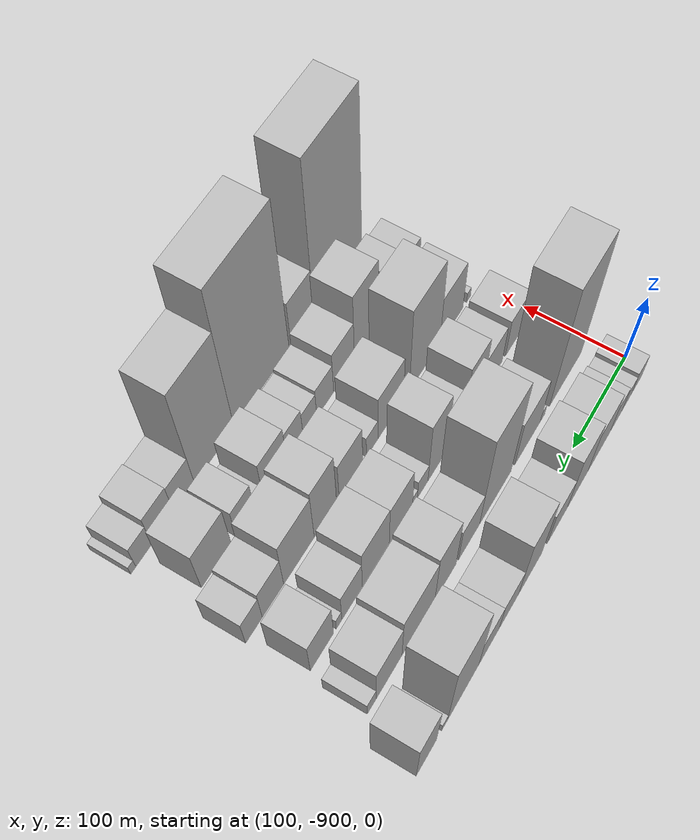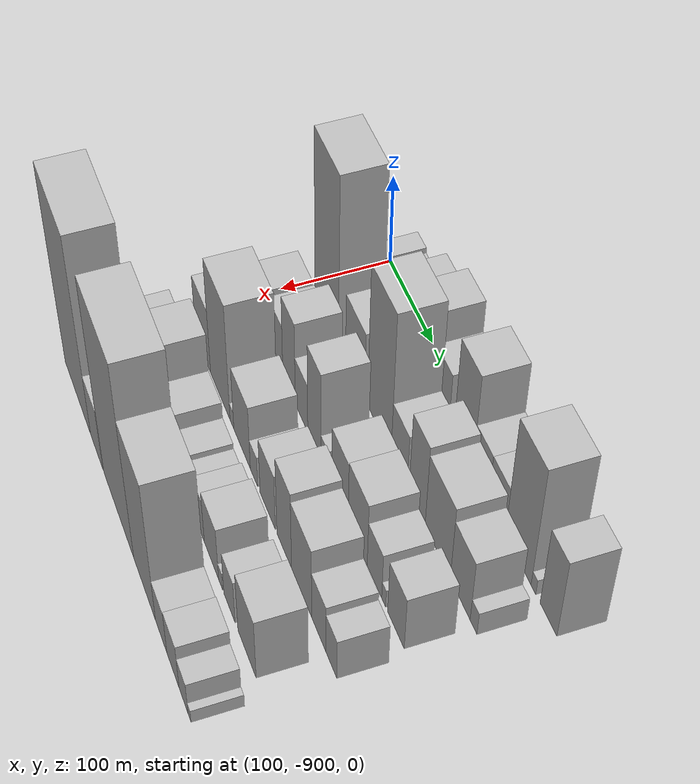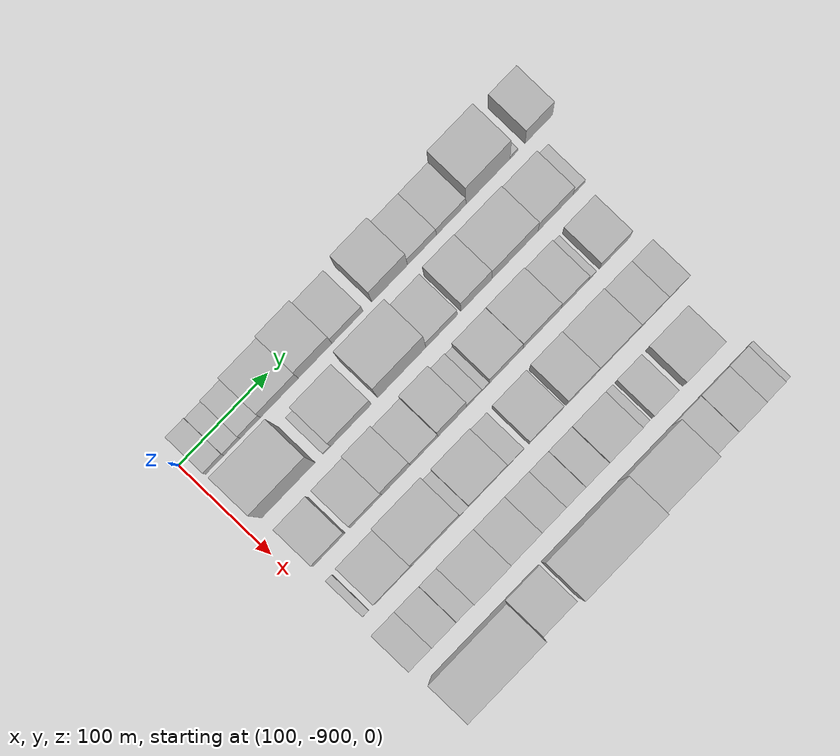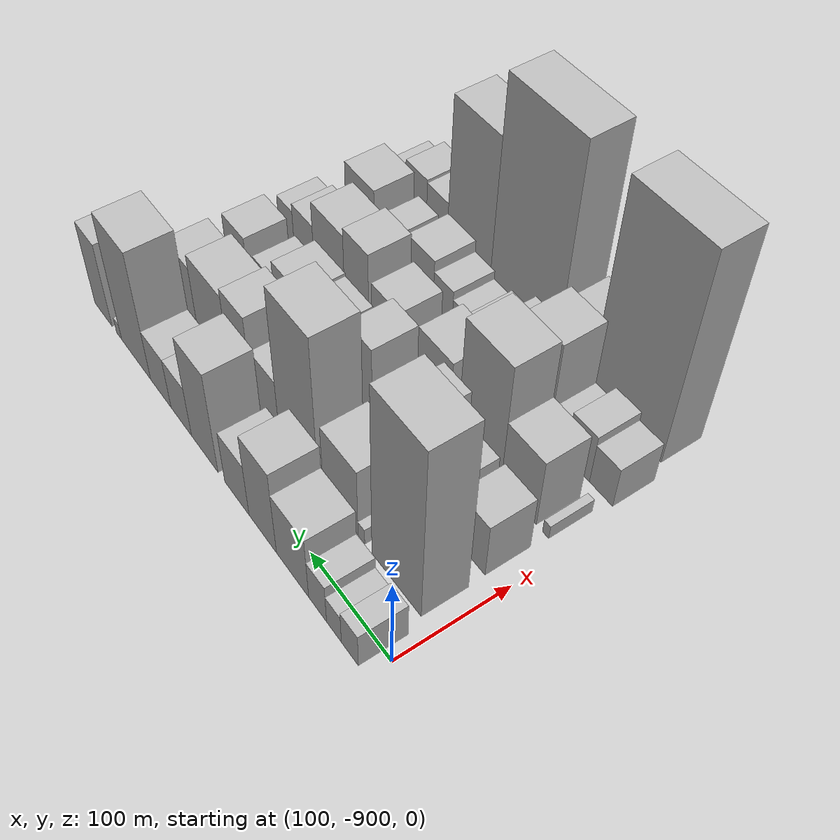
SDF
<sdf version="1.6">
 <world name="default">
  <model name="building_1">
   <static>1</static>
   <pose>100.0000 -879.7281 0 0.000000 0.000000 0.000000</pose>
   <link name="link">
    <pose>0 0 19.50 0 0 0</pose>
    <collision name="collision"><geometry><box><size>40.0000 20.5438 39.0000</size></box></geometry></collision>
    <visual name="visual">
     <cast_shadows>0</cast_shadows>
     <geometry><box><size>40.0000 20.5438 39.0000</size></box></geometry>
     <material>
      <script>
       <uri>model://HANNAS_wall/materials/scripts</uri>
       <uri>model://HANNAS_wall/materials/textures</uri>
       <name>vrc/HANNAS_wall</name>
      </script>
     </material>
    </visual>
   </link>
  </model>
  <model name="building_2">
   <static>1</static>
   <pose>100.0000 -860.3485 0 0.000000 0.000000 0.000000</pose>
   <link name="link">
    <pose>0 0 16.50 0 0 0</pose>
    <collision name="collision"><geometry><box><size>40.0000 18.2153 33.0000</size></box></geometry></collision>
    <visual name="visual">
     <cast_shadows>0</cast_shadows>
     <geometry><box><size>40.0000 18.2153 33.0000</size></box></geometry>
     <material>
      <script>
       <uri>model://HANNAS_wall/materials/scripts</uri>
       <uri>model://HANNAS_wall/materials/textures</uri>
       <name>vrc/HANNAS_wall</name>
      </script>
     </material>
    </visual>
   </link>
  </model>
  <model name="building_3">
   <static>1</static>
   <pose>100.0000 -839.9267 0 0.000000 0.000000 0.000000</pose>
   <link name="link">
    <pose>0 0 22.50 0 0 0</pose>
    <collision name="collision"><geometry><box><size>40.0000 22.6282 45.0000</size></box></geometry></collision>
    <visual name="visual">
     <cast_shadows>0</cast_shadows>
     <geometry><box><size>40.0000 22.6282 45.0000</size></box></geometry>
     <material>
      <script>
       <uri>model://HANNAS_wall/materials/scripts</uri>
       <uri>model://HANNAS_wall/materials/textures</uri>
       <name>vrc/HANNAS_wall</name>
      </script>
     </material>
    </visual>
   </link>
  </model>
  <model name="building_4">
   <static>1</static>
   <pose>100.0000 -807.4633 0 0.000000 0.000000 0.000000</pose>
   <link name="link">
    <pose>0 0 36.00 0 0 0</pose>
    <collision name="collision"><geometry><box><size>40.0000 42.2987 72.0000</size></box></geometry></collision>
    <visual name="visual">
     <cast_shadows>0</cast_shadows>
     <geometry><box><size>40.0000 42.2987 72.0000</size></box></geometry>
     <material>
      <script>
       <uri>model://HANNAS_wall/materials/scripts</uri>
       <uri>model://HANNAS_wall/materials/textures</uri>
       <name>vrc/HANNAS_wall</name>
      </script>
     </material>
    </visual>
   </link>
  </model>
  <model name="building_5">
   <static>1</static>
   <pose>100.0000 -767.4457 0 0.000000 0.000000 0.000000</pose>
   <link name="link">
    <pose>0 0 48.00 0 0 0</pose>
    <collision name="collision"><geometry><box><size>40.0000 37.7364 96.0000</size></box></geometry></collision>
    <visual name="visual">
     <cast_shadows>0</cast_shadows>
     <geometry><box><size>40.0000 37.7364 96.0000</size></box></geometry>
     <material>
      <script>
       <uri>model://HANNAS_wall/materials/scripts</uri>
       <uri>model://HANNAS_wall/materials/textures</uri>
       <name>vrc/HANNAS_wall</name>
      </script>
     </material>
    </visual>
   </link>
  </model>
  <model name="building_6">
   <static>1</static>
   <pose>100.0000 -731.1510 0 0.000000 0.000000 0.000000</pose>
   <link name="link">
    <pose>0 0 30.00 0 0 0</pose>
    <collision name="collision"><geometry><box><size>40.0000 34.8529 60.0000</size></box></geometry></collision>
    <visual name="visual">
     <cast_shadows>0</cast_shadows>
     <geometry><box><size>40.0000 34.8529 60.0000</size></box></geometry>
     <material>
      <script>
       <uri>model://HANNAS_wall/materials/scripts</uri>
       <uri>model://HANNAS_wall/materials/textures</uri>
       <name>vrc/HANNAS_wall</name>
      </script>
     </material>
    </visual>
   </link>
  </model>
  <model name="building_7">
   <static>1</static>
   <pose>100.0000 -683.6892 0 0.000000 0.000000 0.000000</pose>
   <link name="link">
    <pose>0 0 57.00 0 0 0</pose>
    <collision name="collision"><geometry><box><size>40.0000 40.0708 114.0000</size></box></geometry></collision>
    <visual name="visual">
     <cast_shadows>0</cast_shadows>
     <geometry><box><size>40.0000 40.0708 114.0000</size></box></geometry>
     <material>
      <script>
       <uri>model://HANNAS_wall/materials/scripts</uri>
       <uri>model://HANNAS_wall/materials/textures</uri>
       <name>vrc/HANNAS_wall</name>
      </script>
     </material>
    </visual>
   </link>
  </model>
  <model name="building_8">
   <static>1</static>
   <pose>100.0000 -647.4908 0 0.000000 0.000000 0.000000</pose>
   <link name="link">
    <pose>0 0 28.50 0 0 0</pose>
    <collision name="collision"><geometry><box><size>40.0000 32.3261 57.0000</size></box></geometry></collision>
    <visual name="visual">
     <cast_shadows>0</cast_shadows>
     <geometry><box><size>40.0000 32.3261 57.0000</size></box></geometry>
     <material>
      <script>
       <uri>model://HANNAS_wall/materials/scripts</uri>
       <uri>model://HANNAS_wall/materials/textures</uri>
       <name>vrc/HANNAS_wall</name>
      </script>
     </material>
    </visual>
   </link>
  </model>
  <model name="building_9">
   <static>1</static>
   <pose>100.0000 -614.7008 0 0.000000 0.000000 0.000000</pose>
   <link name="link">
    <pose>0 0 28.50 0 0 0</pose>
    <collision name="collision"><geometry><box><size>40.0000 33.2538 57.0000</size></box></geometry></collision>
    <visual name="visual">
     <cast_shadows>0</cast_shadows>
     <geometry><box><size>40.0000 33.2538 57.0000</size></box></geometry>
     <material>
      <script>
       <uri>model://HANNAS_wall/materials/scripts</uri>
       <uri>model://HANNAS_wall/materials/textures</uri>
       <name>vrc/HANNAS_wall</name>
      </script>
     </material>
    </visual>
   </link>
  </model>
  <model name="building_10">
   <static>1</static>
   <pose>100.0000 -573.3062 0 0.000000 0.000000 0.000000</pose>
   <link name="link">
    <pose>0 0 70.50 0 0 0</pose>
    <collision name="collision"><geometry><box><size>40.0000 49.5353 141.0000</size></box></geometry></collision>
    <visual name="visual">
     <cast_shadows>0</cast_shadows>
     <geometry><box><size>40.0000 49.5353 141.0000</size></box></geometry>
     <material>
      <script>
       <uri>model://HANNAS_wall/materials/scripts</uri>
       <uri>model://HANNAS_wall/materials/textures</uri>
       <name>vrc/HANNAS_wall</name>
      </script>
     </material>
    </visual>
   </link>
  </model>
  <model name="building_11">
   <static>1</static>
   <pose>100.0000 -544.0786 0 0.000000 0.000000 0.000000</pose>
   <link name="link">
    <pose>0 0 9.00 0 0 0</pose>
    <collision name="collision"><geometry><box><size>40.0000 8.9200 18.0000</size></box></geometry></collision>
    <visual name="visual">
     <cast_shadows>0</cast_shadows>
     <geometry><box><size>40.0000 8.9200 18.0000</size></box></geometry>
     <material>
      <script>
       <uri>model://HANNAS_wall/materials/scripts</uri>
       <uri>model://HANNAS_wall/materials/textures</uri>
       <name>vrc/HANNAS_wall</name>
      </script>
     </material>
    </visual>
   </link>
  </model>
  <model name="building_12">
   <static>1</static>
   <pose>100.0000 -516.1670 0 0.000000 0.000000 0.000000</pose>
   <link name="link">
    <pose>0 0 46.50 0 0 0</pose>
    <collision name="collision"><geometry><box><size>40.0000 30.9031 93.0000</size></box></geometry></collision>
    <visual name="visual">
     <cast_shadows>0</cast_shadows>
     <geometry><box><size>40.0000 30.9031 93.0000</size></box></geometry>
     <material>
      <script>
       <uri>model://HANNAS_wall/materials/scripts</uri>
       <uri>model://HANNAS_wall/materials/textures</uri>
       <name>vrc/HANNAS_wall</name>
      </script>
     </material>
    </visual>
   </link>
  </model>
  <model name="building_55">
   <static>1</static>
   <pose>155.0000 -854.1976 0 0.000000 0.000000 0.000000</pose>
   <link name="link">
    <pose>0 0 96.00 0 0 0</pose>
    <collision name="collision"><geometry><box><size>40.0000 59.6047 192.0000</size></box></geometry></collision>
    <visual name="visual">
     <cast_shadows>0</cast_shadows>
     <geometry><box><size>40.0000 59.6047 192.0000</size></box></geometry>
     <material>
      <script>
       <uri>model://HANNAS_wall/materials/scripts</uri>
       <uri>model://HANNAS_wall/materials/textures</uri>
       <name>vrc/HANNAS_wall</name>
      </script>
     </material>
    </visual>
   </link>
  </model>
  <model name="building_56">
   <static>1</static>
   <pose>155.0000 -811.1726 0 0.000000 0.000000 0.000000</pose>
   <link name="link">
    <pose>0 0 9.00 0 0 0</pose>
    <collision name="collision"><geometry><box><size>40.0000 8.4454 18.0000</size></box></geometry></collision>
    <visual name="visual">
     <cast_shadows>0</cast_shadows>
     <geometry><box><size>40.0000 8.4454 18.0000</size></box></geometry>
     <material>
      <script>
       <uri>model://HANNAS_wall/materials/scripts</uri>
       <uri>model://HANNAS_wall/materials/textures</uri>
       <name>vrc/HANNAS_wall</name>
      </script>
     </material>
    </visual>
   </link>
  </model>
  <model name="building_57">
   <static>1</static>
   <pose>155.0000 -784.1661 0 0.000000 0.000000 0.000000</pose>
   <link name="link">
    <pose>0 0 39.00 0 0 0</pose>
    <collision name="collision"><geometry><box><size>40.0000 45.5676 78.0000</size></box></geometry></collision>
    <visual name="visual">
     <cast_shadows>0</cast_shadows>
     <geometry><box><size>40.0000 45.5676 78.0000</size></box></geometry>
     <material>
      <script>
       <uri>model://HANNAS_wall/materials/scripts</uri>
       <uri>model://HANNAS_wall/materials/textures</uri>
       <name>vrc/HANNAS_wall</name>
      </script>
     </material>
    </visual>
   </link>
  </model>
  <model name="building_58">
   <static>1</static>
   <pose>155.0000 -727.2576 0 0.000000 0.000000 0.000000</pose>
   <link name="link">
    <pose>0 0 82.50 0 0 0</pose>
    <collision name="collision"><geometry><box><size>40.0000 54.2494 165.0000</size></box></geometry></collision>
    <visual name="visual">
     <cast_shadows>0</cast_shadows>
     <geometry><box><size>40.0000 54.2494 165.0000</size></box></geometry>
     <material>
      <script>
       <uri>model://HANNAS_wall/materials/scripts</uri>
       <uri>model://HANNAS_wall/materials/textures</uri>
       <name>vrc/HANNAS_wall</name>
      </script>
     </material>
    </visual>
   </link>
  </model>
  <model name="building_59">
   <static>1</static>
   <pose>155.0000 -682.4981 0 0.000000 0.000000 0.000000</pose>
   <link name="link">
    <pose>0 0 31.50 0 0 0</pose>
    <collision name="collision"><geometry><box><size>40.0000 35.2697 63.0000</size></box></geometry></collision>
    <visual name="visual">
     <cast_shadows>0</cast_shadows>
     <geometry><box><size>40.0000 35.2697 63.0000</size></box></geometry>
     <material>
      <script>
       <uri>model://HANNAS_wall/materials/scripts</uri>
       <uri>model://HANNAS_wall/materials/textures</uri>
       <name>vrc/HANNAS_wall</name>
      </script>
     </material>
    </visual>
   </link>
  </model>
  <model name="building_60">
   <static>1</static>
   <pose>155.0000 -643.5896 0 0.000000 0.000000 0.000000</pose>
   <link name="link">
    <pose>0 0 48.00 0 0 0</pose>
    <collision name="collision"><geometry><box><size>40.0000 34.5473 96.0000</size></box></geometry></collision>
    <visual name="visual">
     <cast_shadows>0</cast_shadows>
     <geometry><box><size>40.0000 34.5473 96.0000</size></box></geometry>
     <material>
      <script>
       <uri>model://HANNAS_wall/materials/scripts</uri>
       <uri>model://HANNAS_wall/materials/textures</uri>
       <name>vrc/HANNAS_wall</name>
      </script>
     </material>
    </visual>
   </link>
  </model>
  <model name="building_61">
   <static>1</static>
   <pose>155.0000 -600.2814 0 0.000000 0.000000 0.000000</pose>
   <link name="link">
    <pose>0 0 43.50 0 0 0</pose>
    <collision name="collision"><geometry><box><size>40.0000 52.0693 87.0000</size></box></geometry></collision>
    <visual name="visual">
     <cast_shadows>0</cast_shadows>
     <geometry><box><size>40.0000 52.0693 87.0000</size></box></geometry>
     <material>
      <script>
       <uri>model://HANNAS_wall/materials/scripts</uri>
       <uri>model://HANNAS_wall/materials/textures</uri>
       <name>vrc/HANNAS_wall</name>
      </script>
     </material>
    </visual>
   </link>
  </model>
  <model name="building_62">
   <static>1</static>
   <pose>155.0000 -554.6018 0 0.000000 0.000000 0.000000</pose>
   <link name="link">
    <pose>0 0 36.00 0 0 0</pose>
    <collision name="collision"><geometry><box><size>40.0000 39.2900 72.0000</size></box></geometry></collision>
    <visual name="visual">
     <cast_shadows>0</cast_shadows>
     <geometry><box><size>40.0000 39.2900 72.0000</size></box></geometry>
     <material>
      <script>
       <uri>model://HANNAS_wall/materials/scripts</uri>
       <uri>model://HANNAS_wall/materials/textures</uri>
       <name>vrc/HANNAS_wall</name>
      </script>
     </material>
    </visual>
   </link>
  </model>
  <model name="building_63">
   <static>1</static>
   <pose>155.0000 -528.2861 0 0.000000 0.000000 0.000000</pose>
   <link name="link">
    <pose>0 0 13.50 0 0 0</pose>
    <collision name="collision"><geometry><box><size>40.0000 13.3414 27.0000</size></box></geometry></collision>
    <visual name="visual">
     <cast_shadows>0</cast_shadows>
     <geometry><box><size>40.0000 13.3414 27.0000</size></box></geometry>
     <material>
      <script>
       <uri>model://HANNAS_wall/materials/scripts</uri>
       <uri>model://HANNAS_wall/materials/textures</uri>
       <name>vrc/HANNAS_wall</name>
      </script>
     </material>
    </visual>
   </link>
  </model>
  <model name="building_104">
   <static>1</static>
   <pose>210.0000 -865.3353 0 0.000000 0.000000 0.000000</pose>
   <link name="link">
    <pose>0 0 30.00 0 0 0</pose>
    <collision name="collision"><geometry><box><size>40.0000 35.3293 60.0000</size></box></geometry></collision>
    <visual name="visual">
     <cast_shadows>0</cast_shadows>
     <geometry><box><size>40.0000 35.3293 60.0000</size></box></geometry>
     <material>
      <script>
       <uri>model://HANNAS_wall/materials/scripts</uri>
       <uri>model://HANNAS_wall/materials/textures</uri>
       <name>vrc/HANNAS_wall</name>
      </script>
     </material>
    </visual>
   </link>
  </model>
  <model name="building_105">
   <static>1</static>
   <pose>210.0000 -824.0180 0 0.000000 0.000000 0.000000</pose>
   <link name="link">
    <pose>0 0 30.00 0 0 0</pose>
    <collision name="collision"><geometry><box><size>40.0000 35.3052 60.0000</size></box></geometry></collision>
    <visual name="visual">
     <cast_shadows>0</cast_shadows>
     <geometry><box><size>40.0000 35.3052 60.0000</size></box></geometry>
     <material>
      <script>
       <uri>model://HANNAS_wall/materials/scripts</uri>
       <uri>model://HANNAS_wall/materials/textures</uri>
       <name>vrc/HANNAS_wall</name>
      </script>
     </material>
    </visual>
   </link>
  </model>
  <model name="building_106">
   <static>1</static>
   <pose>210.0000 -790.4608 0 0.000000 0.000000 0.000000</pose>
   <link name="link">
    <pose>0 0 48.00 0 0 0</pose>
    <collision name="collision"><geometry><box><size>40.0000 31.8093 96.0000</size></box></geometry></collision>
    <visual name="visual">
     <cast_shadows>0</cast_shadows>
     <geometry><box><size>40.0000 31.8093 96.0000</size></box></geometry>
     <material>
      <script>
       <uri>model://HANNAS_wall/materials/scripts</uri>
       <uri>model://HANNAS_wall/materials/textures</uri>
       <name>vrc/HANNAS_wall</name>
      </script>
     </material>
    </visual>
   </link>
  </model>
  <model name="building_107">
   <static>1</static>
   <pose>210.0000 -759.1476 0 0.000000 0.000000 0.000000</pose>
   <link name="link">
    <pose>0 0 28.50 0 0 0</pose>
    <collision name="collision"><geometry><box><size>40.0000 30.8170 57.0000</size></box></geometry></collision>
    <visual name="visual">
     <cast_shadows>0</cast_shadows>
     <geometry><box><size>40.0000 30.8170 57.0000</size></box></geometry>
     <material>
      <script>
       <uri>model://HANNAS_wall/materials/scripts</uri>
       <uri>model://HANNAS_wall/materials/textures</uri>
       <name>vrc/HANNAS_wall</name>
      </script>
     </material>
    </visual>
   </link>
  </model>
  <model name="building_108">
   <static>1</static>
   <pose>210.0000 -727.8220 0 0.000000 0.000000 0.000000</pose>
   <link name="link">
    <pose>0 0 52.50 0 0 0</pose>
    <collision name="collision"><geometry><box><size>40.0000 31.8343 105.0000</size></box></geometry></collision>
    <visual name="visual">
     <cast_shadows>0</cast_shadows>
     <geometry><box><size>40.0000 31.8343 105.0000</size></box></geometry>
     <material>
      <script>
       <uri>model://HANNAS_wall/materials/scripts</uri>
       <uri>model://HANNAS_wall/materials/textures</uri>
       <name>vrc/HANNAS_wall</name>
      </script>
     </material>
    </visual>
   </link>
  </model>
  <model name="building_109">
   <static>1</static>
   <pose>210.0000 -703.1631 0 0.000000 0.000000 0.000000</pose>
   <link name="link">
    <pose>0 0 16.50 0 0 0</pose>
    <collision name="collision"><geometry><box><size>40.0000 17.4833 33.0000</size></box></geometry></collision>
    <visual name="visual">
     <cast_shadows>0</cast_shadows>
     <geometry><box><size>40.0000 17.4833 33.0000</size></box></geometry>
     <material>
      <script>
       <uri>model://HANNAS_wall/materials/scripts</uri>
       <uri>model://HANNAS_wall/materials/textures</uri>
       <name>vrc/HANNAS_wall</name>
      </script>
     </material>
    </visual>
   </link>
  </model>
  <model name="building_110">
   <static>1</static>
   <pose>210.0000 -690.2807 0 0.000000 0.000000 0.000000</pose>
   <link name="link">
    <pose>0 0 9.00 0 0 0</pose>
    <collision name="collision"><geometry><box><size>40.0000 8.2816 18.0000</size></box></geometry></collision>
    <visual name="visual">
     <cast_shadows>0</cast_shadows>
     <geometry><box><size>40.0000 8.2816 18.0000</size></box></geometry>
     <material>
      <script>
       <uri>model://HANNAS_wall/materials/scripts</uri>
       <uri>model://HANNAS_wall/materials/textures</uri>
       <name>vrc/HANNAS_wall</name>
      </script>
     </material>
    </visual>
   </link>
  </model>
  <model name="building_111">
   <static>1</static>
   <pose>210.0000 -667.3790 0 0.000000 0.000000 0.000000</pose>
   <link name="link">
    <pose>0 0 36.00 0 0 0</pose>
    <collision name="collision"><geometry><box><size>40.0000 37.5217 72.0000</size></box></geometry></collision>
    <visual name="visual">
     <cast_shadows>0</cast_shadows>
     <geometry><box><size>40.0000 37.5217 72.0000</size></box></geometry>
     <material>
      <script>
       <uri>model://HANNAS_wall/materials/scripts</uri>
       <uri>model://HANNAS_wall/materials/textures</uri>
       <name>vrc/HANNAS_wall</name>
      </script>
     </material>
    </visual>
   </link>
  </model>
  <model name="building_112">
   <static>1</static>
   <pose>210.0000 -627.3576 0 0.000000 0.000000 0.000000</pose>
   <link name="link">
    <pose>0 0 37.50 0 0 0</pose>
    <collision name="collision"><geometry><box><size>40.0000 42.5210 75.0000</size></box></geometry></collision>
    <visual name="visual">
     <cast_shadows>0</cast_shadows>
     <geometry><box><size>40.0000 42.5210 75.0000</size></box></geometry>
     <material>
      <script>
       <uri>model://HANNAS_wall/materials/scripts</uri>
       <uri>model://HANNAS_wall/materials/textures</uri>
       <name>vrc/HANNAS_wall</name>
      </script>
     </material>
    </visual>
   </link>
  </model>
  <model name="building_113">
   <static>1</static>
   <pose>210.0000 -590.4951 0 0.000000 0.000000 0.000000</pose>
   <link name="link">
    <pose>0 0 27.00 0 0 0</pose>
    <collision name="collision"><geometry><box><size>40.0000 31.2040 54.0000</size></box></geometry></collision>
    <visual name="visual">
     <cast_shadows>0</cast_shadows>
     <geometry><box><size>40.0000 31.2040 54.0000</size></box></geometry>
     <material>
      <script>
       <uri>model://HANNAS_wall/materials/scripts</uri>
       <uri>model://HANNAS_wall/materials/textures</uri>
       <name>vrc/HANNAS_wall</name>
      </script>
     </material>
    </visual>
   </link>
  </model>
  <model name="building_114">
   <static>1</static>
   <pose>210.0000 -570.6466 0 0.000000 0.000000 0.000000</pose>
   <link name="link">
    <pose>0 0 10.50 0 0 0</pose>
    <collision name="collision"><geometry><box><size>40.0000 8.4931 21.0000</size></box></geometry></collision>
    <visual name="visual">
     <cast_shadows>0</cast_shadows>
     <geometry><box><size>40.0000 8.4931 21.0000</size></box></geometry>
     <material>
      <script>
       <uri>model://HANNAS_wall/materials/scripts</uri>
       <uri>model://HANNAS_wall/materials/textures</uri>
       <name>vrc/HANNAS_wall</name>
      </script>
     </material>
    </visual>
   </link>
  </model>
  <model name="building_115">
   <static>1</static>
   <pose>210.0000 -545.1533 0 0.000000 0.000000 0.000000</pose>
   <link name="link">
    <pose>0 0 31.50 0 0 0</pose>
    <collision name="collision"><geometry><box><size>40.0000 34.4934 63.0000</size></box></geometry></collision>
    <visual name="visual">
     <cast_shadows>0</cast_shadows>
     <geometry><box><size>40.0000 34.4934 63.0000</size></box></geometry>
     <material>
      <script>
       <uri>model://HANNAS_wall/materials/scripts</uri>
       <uri>model://HANNAS_wall/materials/textures</uri>
       <name>vrc/HANNAS_wall</name>
      </script>
     </material>
    </visual>
   </link>
  </model>
  <model name="building_155">
   <static>1</static>
   <pose>265.0000 -881.4780 0 0.000000 0.000000 0.000000</pose>
   <link name="link">
    <pose>0 0 7.50 0 0 0</pose>
    <collision name="collision"><geometry><box><size>40.0000 7.0440 15.0000</size></box></geometry></collision>
    <visual name="visual">
     <cast_shadows>0</cast_shadows>
     <geometry><box><size>40.0000 7.0440 15.0000</size></box></geometry>
     <material>
      <script>
       <uri>model://HANNAS_wall/materials/scripts</uri>
       <uri>model://HANNAS_wall/materials/textures</uri>
       <name>vrc/HANNAS_wall</name>
      </script>
     </material>
    </visual>
   </link>
  </model>
  <model name="building_156">
   <static>1</static>
   <pose>265.0000 -850.2596 0 0.000000 0.000000 0.000000</pose>
   <link name="link">
    <pose>0 0 37.50 0 0 0</pose>
    <collision name="collision"><geometry><box><size>40.0000 41.3928 75.0000</size></box></geometry></collision>
    <visual name="visual">
     <cast_shadows>0</cast_shadows>
     <geometry><box><size>40.0000 41.3928 75.0000</size></box></geometry>
     <material>
      <script>
       <uri>model://HANNAS_wall/materials/scripts</uri>
       <uri>model://HANNAS_wall/materials/textures</uri>
       <name>vrc/HANNAS_wall</name>
      </script>
     </material>
    </visual>
   </link>
  </model>
  <model name="building_157">
   <static>1</static>
   <pose>265.0000 -803.0641 0 0.000000 0.000000 0.000000</pose>
   <link name="link">
    <pose>0 0 67.50 0 0 0</pose>
    <collision name="collision"><geometry><box><size>40.0000 52.9983 135.0000</size></box></geometry></collision>
    <visual name="visual">
     <cast_shadows>0</cast_shadows>
     <geometry><box><size>40.0000 52.9983 135.0000</size></box></geometry>
     <material>
      <script>
       <uri>model://HANNAS_wall/materials/scripts</uri>
       <uri>model://HANNAS_wall/materials/textures</uri>
       <name>vrc/HANNAS_wall</name>
      </script>
     </material>
    </visual>
   </link>
  </model>
  <model name="building_158">
   <static>1</static>
   <pose>265.0000 -771.4988 0 0.000000 0.000000 0.000000</pose>
   <link name="link">
    <pose>0 0 10.50 0 0 0</pose>
    <collision name="collision"><geometry><box><size>40.0000 10.1322 21.0000</size></box></geometry></collision>
    <visual name="visual">
     <cast_shadows>0</cast_shadows>
     <geometry><box><size>40.0000 10.1322 21.0000</size></box></geometry>
     <material>
      <script>
       <uri>model://HANNAS_wall/materials/scripts</uri>
       <uri>model://HANNAS_wall/materials/textures</uri>
       <name>vrc/HANNAS_wall</name>
      </script>
     </material>
    </visual>
   </link>
  </model>
  <model name="building_159">
   <static>1</static>
   <pose>265.0000 -744.9496 0 0.000000 0.000000 0.000000</pose>
   <link name="link">
    <pose>0 0 37.50 0 0 0</pose>
    <collision name="collision"><geometry><box><size>40.0000 42.9663 75.0000</size></box></geometry></collision>
    <visual name="visual">
     <cast_shadows>0</cast_shadows>
     <geometry><box><size>40.0000 42.9663 75.0000</size></box></geometry>
     <material>
      <script>
       <uri>model://HANNAS_wall/materials/scripts</uri>
       <uri>model://HANNAS_wall/materials/textures</uri>
       <name>vrc/HANNAS_wall</name>
      </script>
     </material>
    </visual>
   </link>
  </model>
  <model name="building_160">
   <static>1</static>
   <pose>265.0000 -714.1435 0 0.000000 0.000000 0.000000</pose>
   <link name="link">
    <pose>0 0 18.00 0 0 0</pose>
    <collision name="collision"><geometry><box><size>40.0000 18.6459 36.0000</size></box></geometry></collision>
    <visual name="visual">
     <cast_shadows>0</cast_shadows>
     <geometry><box><size>40.0000 18.6459 36.0000</size></box></geometry>
     <material>
      <script>
       <uri>model://HANNAS_wall/materials/scripts</uri>
       <uri>model://HANNAS_wall/materials/textures</uri>
       <name>vrc/HANNAS_wall</name>
      </script>
     </material>
    </visual>
   </link>
  </model>
  <model name="building_161">
   <static>1</static>
   <pose>265.0000 -679.9780 0 0.000000 0.000000 0.000000</pose>
   <link name="link">
    <pose>0 0 33.00 0 0 0</pose>
    <collision name="collision"><geometry><box><size>40.0000 37.6849 66.0000</size></box></geometry></collision>
    <visual name="visual">
     <cast_shadows>0</cast_shadows>
     <geometry><box><size>40.0000 37.6849 66.0000</size></box></geometry>
     <material>
      <script>
       <uri>model://HANNAS_wall/materials/scripts</uri>
       <uri>model://HANNAS_wall/materials/textures</uri>
       <name>vrc/HANNAS_wall</name>
      </script>
     </material>
    </visual>
   </link>
  </model>
  <model name="building_162">
   <static>1</static>
   <pose>265.0000 -639.7075 0 0.000000 0.000000 0.000000</pose>
   <link name="link">
    <pose>0 0 46.50 0 0 0</pose>
    <collision name="collision"><geometry><box><size>40.0000 34.8561 93.0000</size></box></geometry></collision>
    <visual name="visual">
     <cast_shadows>0</cast_shadows>
     <geometry><box><size>40.0000 34.8561 93.0000</size></box></geometry>
     <material>
      <script>
       <uri>model://HANNAS_wall/materials/scripts</uri>
       <uri>model://HANNAS_wall/materials/textures</uri>
       <name>vrc/HANNAS_wall</name>
      </script>
     </material>
    </visual>
   </link>
  </model>
  <model name="building_163">
   <static>1</static>
   <pose>265.0000 -599.2137 0 0.000000 0.000000 0.000000</pose>
   <link name="link">
    <pose>0 0 42.00 0 0 0</pose>
    <collision name="collision"><geometry><box><size>40.0000 46.1316 84.0000</size></box></geometry></collision>
    <visual name="visual">
     <cast_shadows>0</cast_shadows>
     <geometry><box><size>40.0000 46.1316 84.0000</size></box></geometry>
     <material>
      <script>
       <uri>model://HANNAS_wall/materials/scripts</uri>
       <uri>model://HANNAS_wall/materials/textures</uri>
       <name>vrc/HANNAS_wall</name>
      </script>
     </material>
    </visual>
   </link>
  </model>
  <model name="building_164">
   <static>1</static>
   <pose>265.0000 -560.3516 0 0.000000 0.000000 0.000000</pose>
   <link name="link">
    <pose>0 0 28.50 0 0 0</pose>
    <collision name="collision"><geometry><box><size>40.0000 31.5925 57.0000</size></box></geometry></collision>
    <visual name="visual">
     <cast_shadows>0</cast_shadows>
     <geometry><box><size>40.0000 31.5925 57.0000</size></box></geometry>
     <material>
      <script>
       <uri>model://HANNAS_wall/materials/scripts</uri>
       <uri>model://HANNAS_wall/materials/textures</uri>
       <name>vrc/HANNAS_wall</name>
      </script>
     </material>
    </visual>
   </link>
  </model>
  <model name="building_165">
   <static>1</static>
   <pose>265.0000 -532.5543 0 0.000000 0.000000 0.000000</pose>
   <link name="link">
    <pose>0 0 24.00 0 0 0</pose>
    <collision name="collision"><geometry><box><size>40.0000 24.0023 48.0000</size></box></geometry></collision>
    <visual name="visual">
     <cast_shadows>0</cast_shadows>
     <geometry><box><size>40.0000 24.0023 48.0000</size></box></geometry>
     <material>
      <script>
       <uri>model://HANNAS_wall/materials/scripts</uri>
       <uri>model://HANNAS_wall/materials/textures</uri>
       <name>vrc/HANNAS_wall</name>
      </script>
     </material>
    </visual>
   </link>
  </model>
  <model name="building_212">
   <static>1</static>
   <pose>320.0000 -877.1069 0 0.000000 0.000000 0.000000</pose>
   <link name="link">
    <pose>0 0 22.50 0 0 0</pose>
    <collision name="collision"><geometry><box><size>40.0000 25.7862 45.0000</size></box></geometry></collision>
    <visual name="visual">
     <cast_shadows>0</cast_shadows>
     <geometry><box><size>40.0000 25.7862 45.0000</size></box></geometry>
     <material>
      <script>
       <uri>model://HANNAS_wall/materials/scripts</uri>
       <uri>model://HANNAS_wall/materials/textures</uri>
       <name>vrc/HANNAS_wall</name>
      </script>
     </material>
    </visual>
   </link>
  </model>
  <model name="building_213">
   <static>1</static>
   <pose>320.0000 -850.6673 0 0.000000 0.000000 0.000000</pose>
   <link name="link">
    <pose>0 0 27.00 0 0 0</pose>
    <collision name="collision"><geometry><box><size>40.0000 27.0930 54.0000</size></box></geometry></collision>
    <visual name="visual">
     <cast_shadows>0</cast_shadows>
     <geometry><box><size>40.0000 27.0930 54.0000</size></box></geometry>
     <material>
      <script>
       <uri>model://HANNAS_wall/materials/scripts</uri>
       <uri>model://HANNAS_wall/materials/textures</uri>
       <name>vrc/HANNAS_wall</name>
      </script>
     </material>
    </visual>
   </link>
  </model>
  <model name="building_214">
   <static>1</static>
   <pose>320.0000 -827.1272 0 0.000000 0.000000 0.000000</pose>
   <link name="link">
    <pose>0 0 19.50 0 0 0</pose>
    <collision name="collision"><geometry><box><size>40.0000 19.9871 39.0000</size></box></geometry></collision>
    <visual name="visual">
     <cast_shadows>0</cast_shadows>
     <geometry><box><size>40.0000 19.9871 39.0000</size></box></geometry>
     <material>
      <script>
       <uri>model://HANNAS_wall/materials/scripts</uri>
       <uri>model://HANNAS_wall/materials/textures</uri>
       <name>vrc/HANNAS_wall</name>
      </script>
     </material>
    </visual>
   </link>
  </model>
  <model name="building_215">
   <static>1</static>
   <pose>320.0000 -797.0201 0 0.000000 0.000000 0.000000</pose>
   <link name="link">
    <pose>0 0 54.00 0 0 0</pose>
    <collision name="collision"><geometry><box><size>40.0000 40.2270 108.0000</size></box></geometry></collision>
    <visual name="visual">
     <cast_shadows>0</cast_shadows>
     <geometry><box><size>40.0000 40.2270 108.0000</size></box></geometry>
     <material>
      <script>
       <uri>model://HANNAS_wall/materials/scripts</uri>
       <uri>model://HANNAS_wall/materials/textures</uri>
       <name>vrc/HANNAS_wall</name>
      </script>
     </material>
    </visual>
   </link>
  </model>
  <model name="building_216">
   <static>1</static>
   <pose>320.0000 -759.6730 0 0.000000 0.000000 0.000000</pose>
   <link name="link">
    <pose>0 0 33.00 0 0 0</pose>
    <collision name="collision"><geometry><box><size>40.0000 34.4671 66.0000</size></box></geometry></collision>
    <visual name="visual">
     <cast_shadows>0</cast_shadows>
     <geometry><box><size>40.0000 34.4671 66.0000</size></box></geometry>
     <material>
      <script>
       <uri>model://HANNAS_wall/materials/scripts</uri>
       <uri>model://HANNAS_wall/materials/textures</uri>
       <name>vrc/HANNAS_wall</name>
      </script>
     </material>
    </visual>
   </link>
  </model>
  <model name="building_217">
   <static>1</static>
   <pose>320.0000 -728.8357 0 0.000000 0.000000 0.000000</pose>
   <link name="link">
    <pose>0 0 24.00 0 0 0</pose>
    <collision name="collision"><geometry><box><size>40.0000 27.2076 48.0000</size></box></geometry></collision>
    <visual name="visual">
     <cast_shadows>0</cast_shadows>
     <geometry><box><size>40.0000 27.2076 48.0000</size></box></geometry>
     <material>
      <script>
       <uri>model://HANNAS_wall/materials/scripts</uri>
       <uri>model://HANNAS_wall/materials/textures</uri>
       <name>vrc/HANNAS_wall</name>
      </script>
     </material>
    </visual>
   </link>
  </model>
  <model name="building_218">
   <static>1</static>
   <pose>320.0000 -704.3555 0 0.000000 0.000000 0.000000</pose>
   <link name="link">
    <pose>0 0 21.00 0 0 0</pose>
    <collision name="collision"><geometry><box><size>40.0000 21.7528 42.0000</size></box></geometry></collision>
    <visual name="visual">
     <cast_shadows>0</cast_shadows>
     <geometry><box><size>40.0000 21.7528 42.0000</size></box></geometry>
     <material>
      <script>
       <uri>model://HANNAS_wall/materials/scripts</uri>
       <uri>model://HANNAS_wall/materials/textures</uri>
       <name>vrc/HANNAS_wall</name>
      </script>
     </material>
    </visual>
   </link>
  </model>
  <model name="building_219">
   <static>1</static>
   <pose>320.0000 -680.6403 0 0.000000 0.000000 0.000000</pose>
   <link name="link">
    <pose>0 0 25.50 0 0 0</pose>
    <collision name="collision"><geometry><box><size>40.0000 25.6777 51.0000</size></box></geometry></collision>
    <visual name="visual">
     <cast_shadows>0</cast_shadows>
     <geometry><box><size>40.0000 25.6777 51.0000</size></box></geometry>
     <material>
      <script>
       <uri>model://HANNAS_wall/materials/scripts</uri>
       <uri>model://HANNAS_wall/materials/textures</uri>
       <name>vrc/HANNAS_wall</name>
      </script>
     </material>
    </visual>
   </link>
  </model>
  <model name="building_220">
   <static>1</static>
   <pose>320.0000 -649.3869 0 0.000000 0.000000 0.000000</pose>
   <link name="link">
    <pose>0 0 31.50 0 0 0</pose>
    <collision name="collision"><geometry><box><size>40.0000 36.8290 63.0000</size></box></geometry></collision>
    <visual name="visual">
     <cast_shadows>0</cast_shadows>
     <geometry><box><size>40.0000 36.8290 63.0000</size></box></geometry>
     <material>
      <script>
       <uri>model://HANNAS_wall/materials/scripts</uri>
       <uri>model://HANNAS_wall/materials/textures</uri>
       <name>vrc/HANNAS_wall</name>
      </script>
     </material>
    </visual>
   </link>
  </model>
  <model name="building_221">
   <static>1</static>
   <pose>320.0000 -626.0135 0 0.000000 0.000000 0.000000</pose>
   <link name="link">
    <pose>0 0 10.50 0 0 0</pose>
    <collision name="collision"><geometry><box><size>40.0000 9.9178 21.0000</size></box></geometry></collision>
    <visual name="visual">
     <cast_shadows>0</cast_shadows>
     <geometry><box><size>40.0000 9.9178 21.0000</size></box></geometry>
     <material>
      <script>
       <uri>model://HANNAS_wall/materials/scripts</uri>
       <uri>model://HANNAS_wall/materials/textures</uri>
       <name>vrc/HANNAS_wall</name>
      </script>
     </material>
    </visual>
   </link>
  </model>
  <model name="building_222">
   <static>1</static>
   <pose>320.0000 -604.2664 0 0.000000 0.000000 0.000000</pose>
   <link name="link">
    <pose>0 0 25.50 0 0 0</pose>
    <collision name="collision"><geometry><box><size>40.0000 27.5764 51.0000</size></box></geometry></collision>
    <visual name="visual">
     <cast_shadows>0</cast_shadows>
     <geometry><box><size>40.0000 27.5764 51.0000</size></box></geometry>
     <material>
      <script>
       <uri>model://HANNAS_wall/materials/scripts</uri>
       <uri>model://HANNAS_wall/materials/textures</uri>
       <name>vrc/HANNAS_wall</name>
      </script>
     </material>
    </visual>
   </link>
  </model>
  <model name="building_223">
   <static>1</static>
   <pose>320.0000 -561.8877 0 0.000000 0.000000 0.000000</pose>
   <link name="link">
    <pose>0 0 36.00 0 0 0</pose>
    <collision name="collision"><geometry><box><size>40.0000 43.1809 72.0000</size></box></geometry></collision>
    <visual name="visual">
     <cast_shadows>0</cast_shadows>
     <geometry><box><size>40.0000 43.1809 72.0000</size></box></geometry>
     <material>
      <script>
       <uri>model://HANNAS_wall/materials/scripts</uri>
       <uri>model://HANNAS_wall/materials/textures</uri>
       <name>vrc/HANNAS_wall</name>
      </script>
     </material>
    </visual>
   </link>
  </model>
  <model name="building_264">
   <static>1</static>
   <pose>375.0000 -839.9129 0 0.000000 0.000000 0.000000</pose>
   <link name="link">
    <pose>0 0 112.50 0 0 0</pose>
    <collision name="collision"><geometry><box><size>40.0000 82.1743 225.0000</size></box></geometry></collision>
    <visual name="visual">
     <cast_shadows>0</cast_shadows>
     <geometry><box><size>40.0000 82.1743 225.0000</size></box></geometry>
     <material>
      <script>
       <uri>model://HANNAS_wall/materials/scripts</uri>
       <uri>model://HANNAS_wall/materials/textures</uri>
       <name>vrc/HANNAS_wall</name>
      </script>
     </material>
    </visual>
   </link>
  </model>
  <model name="building_265">
   <static>1</static>
   <pose>375.0000 -780.1161 0 0.000000 0.000000 0.000000</pose>
   <link name="link">
    <pose>0 0 36.00 0 0 0</pose>
    <collision name="collision"><geometry><box><size>40.0000 37.4192 72.0000</size></box></geometry></collision>
    <visual name="visual">
     <cast_shadows>0</cast_shadows>
     <geometry><box><size>40.0000 37.4192 72.0000</size></box></geometry>
     <material>
      <script>
       <uri>model://HANNAS_wall/materials/scripts</uri>
       <uri>model://HANNAS_wall/materials/textures</uri>
       <name>vrc/HANNAS_wall</name>
      </script>
     </material>
    </visual>
   </link>
  </model>
  <model name="building_266">
   <static>1</static>
   <pose>375.0000 -714.8426 0 0.000000 0.000000 0.000000</pose>
   <link name="link">
    <pose>0 0 112.50 0 0 0</pose>
    <collision name="collision"><geometry><box><size>40.0000 87.1279 225.0000</size></box></geometry></collision>
    <visual name="visual">
     <cast_shadows>0</cast_shadows>
     <geometry><box><size>40.0000 87.1279 225.0000</size></box></geometry>
     <material>
      <script>
       <uri>model://HANNAS_wall/materials/scripts</uri>
       <uri>model://HANNAS_wall/materials/textures</uri>
       <name>vrc/HANNAS_wall</name>
      </script>
     </material>
    </visual>
   </link>
  </model>
  <model name="building_267">
   <static>1</static>
   <pose>375.0000 -641.5532 0 0.000000 0.000000 0.000000</pose>
   <link name="link">
    <pose>0 0 82.50 0 0 0</pose>
    <collision name="collision"><geometry><box><size>40.0000 59.4509 165.0000</size></box></geometry></collision>
    <visual name="visual">
     <cast_shadows>0</cast_shadows>
     <geometry><box><size>40.0000 59.4509 165.0000</size></box></geometry>
     <material>
      <script>
       <uri>model://HANNAS_wall/materials/scripts</uri>
       <uri>model://HANNAS_wall/materials/textures</uri>
       <name>vrc/HANNAS_wall</name>
      </script>
     </material>
    </visual>
   </link>
  </model>
  <model name="building_268">
   <static>1</static>
   <pose>375.0000 -596.8467 0 0.000000 0.000000 0.000000</pose>
   <link name="link">
    <pose>0 0 25.50 0 0 0</pose>
    <collision name="collision"><geometry><box><size>40.0000 29.9620 51.0000</size></box></geometry></collision>
    <visual name="visual">
     <cast_shadows>0</cast_shadows>
     <geometry><box><size>40.0000 29.9620 51.0000</size></box></geometry>
     <material>
      <script>
       <uri>model://HANNAS_wall/materials/scripts</uri>
       <uri>model://HANNAS_wall/materials/textures</uri>
       <name>vrc/HANNAS_wall</name>
      </script>
     </material>
    </visual>
   </link>
  </model>
  <model name="building_269">
   <static>1</static>
   <pose>375.0000 -566.1836 0 0.000000 0.000000 0.000000</pose>
   <link name="link">
    <pose>0 0 27.00 0 0 0</pose>
    <collision name="collision"><geometry><box><size>40.0000 31.3642 54.0000</size></box></geometry></collision>
    <visual name="visual">
     <cast_shadows>0</cast_shadows>
     <geometry><box><size>40.0000 31.3642 54.0000</size></box></geometry>
     <material>
      <script>
       <uri>model://HANNAS_wall/materials/scripts</uri>
       <uri>model://HANNAS_wall/materials/textures</uri>
       <name>vrc/HANNAS_wall</name>
      </script>
     </material>
    </visual>
   </link>
  </model>
  <model name="building_270">
   <static>1</static>
   <pose>375.0000 -539.2929 0 0.000000 0.000000 0.000000</pose>
   <link name="link">
    <pose>0 0 19.50 0 0 0</pose>
    <collision name="collision"><geometry><box><size>40.0000 22.4173 39.0000</size></box></geometry></collision>
    <visual name="visual">
     <cast_shadows>0</cast_shadows>
     <geometry><box><size>40.0000 22.4173 39.0000</size></box></geometry>
     <material>
      <script>
       <uri>model://HANNAS_wall/materials/scripts</uri>
       <uri>model://HANNAS_wall/materials/textures</uri>
       <name>vrc/HANNAS_wall</name>
      </script>
     </material>
    </visual>
   </link>
  </model>
  <model name="building_271">
   <static>1</static>
   <pose>375.0000 -524.5014 0 0.000000 0.000000 0.000000</pose>
   <link name="link">
    <pose>0 0 7.50 0 0 0</pose>
    <collision name="collision"><geometry><box><size>40.0000 7.1659 15.0000</size></box></geometry></collision>
    <visual name="visual">
     <cast_shadows>0</cast_shadows>
     <geometry><box><size>40.0000 7.1659 15.0000</size></box></geometry>
     <material>
      <script>
       <uri>model://HANNAS_wall/materials/scripts</uri>
       <uri>model://HANNAS_wall/materials/textures</uri>
       <name>vrc/HANNAS_wall</name>
      </script>
     </material>
    </visual>
   </link>
  </model>
 </world>
</sdf>
